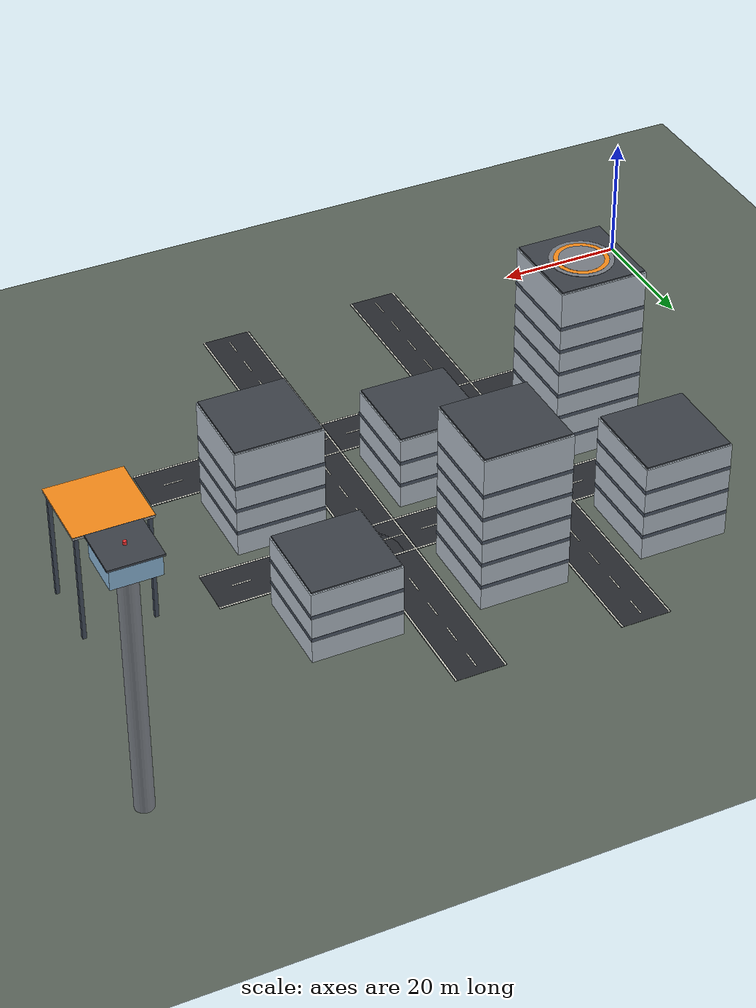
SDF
<sdf version="1.9">
 <world name="autonomous_city">
  <model name="ground">
   <static>true</static>
   <link name="link">
    <collision name="collision">
     <geometry><plane><normal>0 0 1</normal><size>600 600</size></plane></geometry>
     <surface><friction><ode><mu>100</mu><mu2>50</mu2></ode></friction></surface>
    </collision>
    <visual name="visual">
     <geometry><plane><normal>0 0 1</normal><size>600 600</size></plane></geometry>
     <material>
      <ambient>0.36 0.40 0.36 1</ambient>
      <diffuse>0.36 0.40 0.36 1</diffuse>
      <specular>0.15 0.15 0.15 1</specular>
     </material>
    </visual>
   </link>
  </model>
  <model name="building_04">
   <static>true</static>
   <pose>30 41 0 0 0 0.0</pose>
   <link name="link">
    <visual name="core">
     <pose>0 0 15.0 0 0 0</pose>
     <geometry><box><size>14.000 14.000 30.000</size></box></geometry>
     <material>
      <ambient>0.70 0.74 0.78 1</ambient>
      <diffuse>0.70 0.74 0.78 1</diffuse>
      <specular>0.15 0.15 0.15 1</specular>
     </material>
    </visual>
    <collision name="core_c">
     <pose>0 0 15.0 0 0 0</pose>
     <geometry><box><size>14.000 14.000 30.000</size></box></geometry>
    </collision>
    <visual name="band1">
     <pose>0 0 4.00 0 0 0</pose>
     <geometry><box><size>14.060 14.060 0.600</size></box></geometry>
     <material>
      <ambient>0.30 0.34 0.40 1</ambient>
      <diffuse>0.30 0.34 0.40 1</diffuse>
      <specular>0.15 0.15 0.15 1</specular>
     </material>
    </visual>
    <visual name="band2">
     <pose>0 0 8.00 0 0 0</pose>
     <geometry><box><size>14.060 14.060 0.600</size></box></geometry>
     <material>
      <ambient>0.30 0.34 0.40 1</ambient>
      <diffuse>0.30 0.34 0.40 1</diffuse>
      <specular>0.15 0.15 0.15 1</specular>
     </material>
    </visual>
    <visual name="band3">
     <pose>0 0 12.00 0 0 0</pose>
     <geometry><box><size>14.060 14.060 0.600</size></box></geometry>
     <material>
      <ambient>0.30 0.34 0.40 1</ambient>
      <diffuse>0.30 0.34 0.40 1</diffuse>
      <specular>0.15 0.15 0.15 1</specular>
     </material>
    </visual>
    <visual name="band4">
     <pose>0 0 16.00 0 0 0</pose>
     <geometry><box><size>14.060 14.060 0.600</size></box></geometry>
     <material>
      <ambient>0.30 0.34 0.40 1</ambient>
      <diffuse>0.30 0.34 0.40 1</diffuse>
      <specular>0.15 0.15 0.15 1</specular>
     </material>
    </visual>
    <visual name="band5">
     <pose>0 0 20.00 0 0 0</pose>
     <geometry><box><size>14.060 14.060 0.600</size></box></geometry>
     <material>
      <ambient>0.30 0.34 0.40 1</ambient>
      <diffuse>0.30 0.34 0.40 1</diffuse>
      <specular>0.15 0.15 0.15 1</specular>
     </material>
    </visual>
    <visual name="band6">
     <pose>0 0 24.00 0 0 0</pose>
     <geometry><box><size>14.060 14.060 0.600</size></box></geometry>
     <material>
      <ambient>0.30 0.34 0.40 1</ambient>
      <diffuse>0.30 0.34 0.40 1</diffuse>
      <specular>0.15 0.15 0.15 1</specular>
     </material>
    </visual>
    <visual name="roof">
     <pose>0 0 30.15 0 0 0</pose>
     <geometry><box><size>13.600 13.600 0.300</size></box></geometry>
     <material>
      <ambient>0.24 0.26 0.29 1</ambient>
      <diffuse>0.24 0.26 0.29 1</diffuse>
      <specular>0.15 0.15 0.15 1</specular>
     </material>
    </visual>
    <collision name="roof_c">
     <pose>0 0 30.15 0 0 0</pose>
     <geometry><box><size>13.600 13.600 0.300</size></box></geometry>
    </collision>
    <visual name="helipad">
     <pose>0 0 30.33 0 0 0</pose>
     <geometry><cylinder><radius>4.900</radius><length>0.050</length></cylinder></geometry>
     <material>
      <ambient>0.48 0.50 0.53 1</ambient>
      <diffuse>0.48 0.50 0.53 1</diffuse>
      <specular>0.15 0.15 0.15 1</specular>
     </material>
    </visual>
    <visual name="helipad_ring">
     <pose>0 0 30.34 0 0 0</pose>
     <geometry><cylinder><radius>4.165</radius><length>0.060</length></cylinder></geometry>
     <material>
      <ambient>0.98 0.55 0.10 1</ambient>
      <diffuse>0.98 0.55 0.10 1</diffuse>
      <specular>0.15 0.15 0.15 1</specular>
     </material>
    </visual>
    <visual name="helipad_core">
     <pose>0 0 30.35 0 0 0</pose>
     <geometry><cylinder><radius>3.430</radius><length>0.070</length></cylinder></geometry>
     <material>
      <ambient>0.48 0.50 0.53 1</ambient>
      <diffuse>0.48 0.50 0.53 1</diffuse>
      <specular>0.15 0.15 0.15 1</specular>
     </material>
    </visual>
   </link>
  </model>
  <model name="building_05">
   <static>true</static>
   <pose>56 41 0 0 0 0.0</pose>
   <link name="link">
    <visual name="core">
     <pose>0 0 6.0 0 0 0</pose>
     <geometry><box><size>14.000 14.000 12.000</size></box></geometry>
     <material>
      <ambient>0.70 0.74 0.78 1</ambient>
      <diffuse>0.70 0.74 0.78 1</diffuse>
      <specular>0.15 0.15 0.15 1</specular>
     </material>
    </visual>
    <collision name="core_c">
     <pose>0 0 6.0 0 0 0</pose>
     <geometry><box><size>14.000 14.000 12.000</size></box></geometry>
    </collision>
    <visual name="band1">
     <pose>0 0 4.00 0 0 0</pose>
     <geometry><box><size>14.060 14.060 0.600</size></box></geometry>
     <material>
      <ambient>0.30 0.34 0.40 1</ambient>
      <diffuse>0.30 0.34 0.40 1</diffuse>
      <specular>0.15 0.15 0.15 1</specular>
     </material>
    </visual>
    <visual name="band2">
     <pose>0 0 8.00 0 0 0</pose>
     <geometry><box><size>14.060 14.060 0.600</size></box></geometry>
     <material>
      <ambient>0.30 0.34 0.40 1</ambient>
      <diffuse>0.30 0.34 0.40 1</diffuse>
      <specular>0.15 0.15 0.15 1</specular>
     </material>
    </visual>
    <visual name="roof">
     <pose>0 0 12.15 0 0 0</pose>
     <geometry><box><size>13.600 13.600 0.300</size></box></geometry>
     <material>
      <ambient>0.24 0.26 0.29 1</ambient>
      <diffuse>0.24 0.26 0.29 1</diffuse>
      <specular>0.15 0.15 0.15 1</specular>
     </material>
    </visual>
    <collision name="roof_c">
     <pose>0 0 12.15 0 0 0</pose>
     <geometry><box><size>13.600 13.600 0.300</size></box></geometry>
    </collision>
   </link>
  </model>
  <model name="building_06">
   <static>true</static>
   <pose>82 41 0 0 0 0.0</pose>
   <link name="link">
    <visual name="core">
     <pose>0 0 9.0 0 0 0</pose>
     <geometry><box><size>14.000 14.000 18.000</size></box></geometry>
     <material>
      <ambient>0.70 0.74 0.78 1</ambient>
      <diffuse>0.70 0.74 0.78 1</diffuse>
      <specular>0.15 0.15 0.15 1</specular>
     </material>
    </visual>
    <collision name="core_c">
     <pose>0 0 9.0 0 0 0</pose>
     <geometry><box><size>14.000 14.000 18.000</size></box></geometry>
    </collision>
    <visual name="band1">
     <pose>0 0 4.00 0 0 0</pose>
     <geometry><box><size>14.060 14.060 0.600</size></box></geometry>
     <material>
      <ambient>0.30 0.34 0.40 1</ambient>
      <diffuse>0.30 0.34 0.40 1</diffuse>
      <specular>0.15 0.15 0.15 1</specular>
     </material>
    </visual>
    <visual name="band2">
     <pose>0 0 8.00 0 0 0</pose>
     <geometry><box><size>14.060 14.060 0.600</size></box></geometry>
     <material>
      <ambient>0.30 0.34 0.40 1</ambient>
      <diffuse>0.30 0.34 0.40 1</diffuse>
      <specular>0.15 0.15 0.15 1</specular>
     </material>
    </visual>
    <visual name="band3">
     <pose>0 0 12.00 0 0 0</pose>
     <geometry><box><size>14.060 14.060 0.600</size></box></geometry>
     <material>
      <ambient>0.30 0.34 0.40 1</ambient>
      <diffuse>0.30 0.34 0.40 1</diffuse>
      <specular>0.15 0.15 0.15 1</specular>
     </material>
    </visual>
    <visual name="roof">
     <pose>0 0 18.15 0 0 0</pose>
     <geometry><box><size>13.600 13.600 0.300</size></box></geometry>
     <material>
      <ambient>0.24 0.26 0.29 1</ambient>
      <diffuse>0.24 0.26 0.29 1</diffuse>
      <specular>0.15 0.15 0.15 1</specular>
     </material>
    </visual>
    <collision name="roof_c">
     <pose>0 0 18.15 0 0 0</pose>
     <geometry><box><size>13.600 13.600 0.300</size></box></geometry>
    </collision>
   </link>
  </model>
  <model name="building_07">
   <static>true</static>
   <pose>30 67 0 0 0 0.0</pose>
   <link name="link">
    <visual name="core">
     <pose>0 0 8.0 0 0 0</pose>
     <geometry><box><size>14.000 14.000 16.000</size></box></geometry>
     <material>
      <ambient>0.70 0.74 0.78 1</ambient>
      <diffuse>0.70 0.74 0.78 1</diffuse>
      <specular>0.15 0.15 0.15 1</specular>
     </material>
    </visual>
    <collision name="core_c">
     <pose>0 0 8.0 0 0 0</pose>
     <geometry><box><size>14.000 14.000 16.000</size></box></geometry>
    </collision>
    <visual name="band1">
     <pose>0 0 4.00 0 0 0</pose>
     <geometry><box><size>14.060 14.060 0.600</size></box></geometry>
     <material>
      <ambient>0.30 0.34 0.40 1</ambient>
      <diffuse>0.30 0.34 0.40 1</diffuse>
      <specular>0.15 0.15 0.15 1</specular>
     </material>
    </visual>
    <visual name="band2">
     <pose>0 0 8.00 0 0 0</pose>
     <geometry><box><size>14.060 14.060 0.600</size></box></geometry>
     <material>
      <ambient>0.30 0.34 0.40 1</ambient>
      <diffuse>0.30 0.34 0.40 1</diffuse>
      <specular>0.15 0.15 0.15 1</specular>
     </material>
    </visual>
    <visual name="band3">
     <pose>0 0 12.00 0 0 0</pose>
     <geometry><box><size>14.060 14.060 0.600</size></box></geometry>
     <material>
      <ambient>0.30 0.34 0.40 1</ambient>
      <diffuse>0.30 0.34 0.40 1</diffuse>
      <specular>0.15 0.15 0.15 1</specular>
     </material>
    </visual>
    <visual name="roof">
     <pose>0 0 16.15 0 0 0</pose>
     <geometry><box><size>13.600 13.600 0.300</size></box></geometry>
     <material>
      <ambient>0.24 0.26 0.29 1</ambient>
      <diffuse>0.24 0.26 0.29 1</diffuse>
      <specular>0.15 0.15 0.15 1</specular>
     </material>
    </visual>
    <collision name="roof_c">
     <pose>0 0 16.15 0 0 0</pose>
     <geometry><box><size>13.600 13.600 0.300</size></box></geometry>
    </collision>
   </link>
  </model>
  <model name="building_08">
   <static>true</static>
   <pose>56 67 0 0 0 0.0</pose>
   <link name="link">
    <visual name="core">
     <pose>0 0 13.0 0 0 0</pose>
     <geometry><box><size>14.000 14.000 26.000</size></box></geometry>
     <material>
      <ambient>0.70 0.74 0.78 1</ambient>
      <diffuse>0.70 0.74 0.78 1</diffuse>
      <specular>0.15 0.15 0.15 1</specular>
     </material>
    </visual>
    <collision name="core_c">
     <pose>0 0 13.0 0 0 0</pose>
     <geometry><box><size>14.000 14.000 26.000</size></box></geometry>
    </collision>
    <visual name="band1">
     <pose>0 0 4.00 0 0 0</pose>
     <geometry><box><size>14.060 14.060 0.600</size></box></geometry>
     <material>
      <ambient>0.30 0.34 0.40 1</ambient>
      <diffuse>0.30 0.34 0.40 1</diffuse>
      <specular>0.15 0.15 0.15 1</specular>
     </material>
    </visual>
    <visual name="band2">
     <pose>0 0 8.00 0 0 0</pose>
     <geometry><box><size>14.060 14.060 0.600</size></box></geometry>
     <material>
      <ambient>0.30 0.34 0.40 1</ambient>
      <diffuse>0.30 0.34 0.40 1</diffuse>
      <specular>0.15 0.15 0.15 1</specular>
     </material>
    </visual>
    <visual name="band3">
     <pose>0 0 12.00 0 0 0</pose>
     <geometry><box><size>14.060 14.060 0.600</size></box></geometry>
     <material>
      <ambient>0.30 0.34 0.40 1</ambient>
      <diffuse>0.30 0.34 0.40 1</diffuse>
      <specular>0.15 0.15 0.15 1</specular>
     </material>
    </visual>
    <visual name="band4">
     <pose>0 0 16.00 0 0 0</pose>
     <geometry><box><size>14.060 14.060 0.600</size></box></geometry>
     <material>
      <ambient>0.30 0.34 0.40 1</ambient>
      <diffuse>0.30 0.34 0.40 1</diffuse>
      <specular>0.15 0.15 0.15 1</specular>
     </material>
    </visual>
    <visual name="band5">
     <pose>0 0 20.00 0 0 0</pose>
     <geometry><box><size>14.060 14.060 0.600</size></box></geometry>
     <material>
      <ambient>0.30 0.34 0.40 1</ambient>
      <diffuse>0.30 0.34 0.40 1</diffuse>
      <specular>0.15 0.15 0.15 1</specular>
     </material>
    </visual>
    <visual name="roof">
     <pose>0 0 26.15 0 0 0</pose>
     <geometry><box><size>13.600 13.600 0.300</size></box></geometry>
     <material>
      <ambient>0.24 0.26 0.29 1</ambient>
      <diffuse>0.24 0.26 0.29 1</diffuse>
      <specular>0.15 0.15 0.15 1</specular>
     </material>
    </visual>
    <collision name="roof_c">
     <pose>0 0 26.15 0 0 0</pose>
     <geometry><box><size>13.600 13.600 0.300</size></box></geometry>
    </collision>
   </link>
  </model>
  <model name="building_09">
   <static>true</static>
   <pose>82 67 0 0 0 0.0</pose>
   <link name="link">
    <visual name="core">
     <pose>0 0 6.0 0 0 0</pose>
     <geometry><box><size>14.000 14.000 12.000</size></box></geometry>
     <material>
      <ambient>0.70 0.74 0.78 1</ambient>
      <diffuse>0.70 0.74 0.78 1</diffuse>
      <specular>0.15 0.15 0.15 1</specular>
     </material>
    </visual>
    <collision name="core_c">
     <pose>0 0 6.0 0 0 0</pose>
     <geometry><box><size>14.000 14.000 12.000</size></box></geometry>
    </collision>
    <visual name="band1">
     <pose>0 0 4.00 0 0 0</pose>
     <geometry><box><size>14.060 14.060 0.600</size></box></geometry>
     <material>
      <ambient>0.30 0.34 0.40 1</ambient>
      <diffuse>0.30 0.34 0.40 1</diffuse>
      <specular>0.15 0.15 0.15 1</specular>
     </material>
    </visual>
    <visual name="band2">
     <pose>0 0 8.00 0 0 0</pose>
     <geometry><box><size>14.060 14.060 0.600</size></box></geometry>
     <material>
      <ambient>0.30 0.34 0.40 1</ambient>
      <diffuse>0.30 0.34 0.40 1</diffuse>
      <specular>0.15 0.15 0.15 1</specular>
     </material>
    </visual>
    <visual name="roof">
     <pose>0 0 12.15 0 0 0</pose>
     <geometry><box><size>13.600 13.600 0.300</size></box></geometry>
     <material>
      <ambient>0.24 0.26 0.29 1</ambient>
      <diffuse>0.24 0.26 0.29 1</diffuse>
      <specular>0.15 0.15 0.15 1</specular>
     </material>
    </visual>
    <collision name="roof_c">
     <pose>0 0 12.15 0 0 0</pose>
     <geometry><box><size>13.600 13.600 0.300</size></box></geometry>
    </collision>
   </link>
  </model>
  <model name="street_ns_1">
   <static>true</static>
   <pose>43 41 0 0 0 1.5708</pose>
   <link name="link">
    <visual name="asphalt">
     <pose>0 0 0.02 0 0 0</pose>
     <geometry><box><size>90.000 8.000 0.040</size></box></geometry>
     <material>
      <ambient>0.16 0.17 0.19 1</ambient>
      <diffuse>0.16 0.17 0.19 1</diffuse>
      <specular>0.15 0.15 0.15 1</specular>
     </material>
    </visual>
    <visual name="dash0">
     <pose>-42.00 0 0.045 0 0 0</pose>
     <geometry><box><size>3.000 0.200 0.010</size></box></geometry>
     <material>
      <ambient>0.95 0.95 0.90 1</ambient>
      <diffuse>0.95 0.95 0.90 1</diffuse>
      <specular>0.15 0.15 0.15 1</specular>
     </material>
    </visual>
    <visual name="dash1">
     <pose>-36.00 0 0.045 0 0 0</pose>
     <geometry><box><size>3.000 0.200 0.010</size></box></geometry>
     <material>
      <ambient>0.95 0.95 0.90 1</ambient>
      <diffuse>0.95 0.95 0.90 1</diffuse>
      <specular>0.15 0.15 0.15 1</specular>
     </material>
    </visual>
    <visual name="dash2">
     <pose>-30.00 0 0.045 0 0 0</pose>
     <geometry><box><size>3.000 0.200 0.010</size></box></geometry>
     <material>
      <ambient>0.95 0.95 0.90 1</ambient>
      <diffuse>0.95 0.95 0.90 1</diffuse>
      <specular>0.15 0.15 0.15 1</specular>
     </material>
    </visual>
    <visual name="dash3">
     <pose>-24.00 0 0.045 0 0 0</pose>
     <geometry><box><size>3.000 0.200 0.010</size></box></geometry>
     <material>
      <ambient>0.95 0.95 0.90 1</ambient>
      <diffuse>0.95 0.95 0.90 1</diffuse>
      <specular>0.15 0.15 0.15 1</specular>
     </material>
    </visual>
    <visual name="dash4">
     <pose>-18.00 0 0.045 0 0 0</pose>
     <geometry><box><size>3.000 0.200 0.010</size></box></geometry>
     <material>
      <ambient>0.95 0.95 0.90 1</ambient>
      <diffuse>0.95 0.95 0.90 1</diffuse>
      <specular>0.15 0.15 0.15 1</specular>
     </material>
    </visual>
    <visual name="dash5">
     <pose>-12.00 0 0.045 0 0 0</pose>
     <geometry><box><size>3.000 0.200 0.010</size></box></geometry>
     <material>
      <ambient>0.95 0.95 0.90 1</ambient>
      <diffuse>0.95 0.95 0.90 1</diffuse>
      <specular>0.15 0.15 0.15 1</specular>
     </material>
    </visual>
    <visual name="dash6">
     <pose>-6.00 0 0.045 0 0 0</pose>
     <geometry><box><size>3.000 0.200 0.010</size></box></geometry>
     <material>
      <ambient>0.95 0.95 0.90 1</ambient>
      <diffuse>0.95 0.95 0.90 1</diffuse>
      <specular>0.15 0.15 0.15 1</specular>
     </material>
    </visual>
    <visual name="dash7">
     <pose>0.00 0 0.045 0 0 0</pose>
     <geometry><box><size>3.000 0.200 0.010</size></box></geometry>
     <material>
      <ambient>0.95 0.95 0.90 1</ambient>
      <diffuse>0.95 0.95 0.90 1</diffuse>
      <specular>0.15 0.15 0.15 1</specular>
     </material>
    </visual>
    <visual name="dash8">
     <pose>6.00 0 0.045 0 0 0</pose>
     <geometry><box><size>3.000 0.200 0.010</size></box></geometry>
     <material>
      <ambient>0.95 0.95 0.90 1</ambient>
      <diffuse>0.95 0.95 0.90 1</diffuse>
      <specular>0.15 0.15 0.15 1</specular>
     </material>
    </visual>
    <visual name="dash9">
     <pose>12.00 0 0.045 0 0 0</pose>
     <geometry><box><size>3.000 0.200 0.010</size></box></geometry>
     <material>
      <ambient>0.95 0.95 0.90 1</ambient>
      <diffuse>0.95 0.95 0.90 1</diffuse>
      <specular>0.15 0.15 0.15 1</specular>
     </material>
    </visual>
    <visual name="dash10">
     <pose>18.00 0 0.045 0 0 0</pose>
     <geometry><box><size>3.000 0.200 0.010</size></box></geometry>
     <material>
      <ambient>0.95 0.95 0.90 1</ambient>
      <diffuse>0.95 0.95 0.90 1</diffuse>
      <specular>0.15 0.15 0.15 1</specular>
     </material>
    </visual>
    <visual name="dash11">
     <pose>24.00 0 0.045 0 0 0</pose>
     <geometry><box><size>3.000 0.200 0.010</size></box></geometry>
     <material>
      <ambient>0.95 0.95 0.90 1</ambient>
      <diffuse>0.95 0.95 0.90 1</diffuse>
      <specular>0.15 0.15 0.15 1</specular>
     </material>
    </visual>
    <visual name="dash12">
     <pose>30.00 0 0.045 0 0 0</pose>
     <geometry><box><size>3.000 0.200 0.010</size></box></geometry>
     <material>
      <ambient>0.95 0.95 0.90 1</ambient>
      <diffuse>0.95 0.95 0.90 1</diffuse>
      <specular>0.15 0.15 0.15 1</specular>
     </material>
    </visual>
    <visual name="dash13">
     <pose>36.00 0 0.045 0 0 0</pose>
     <geometry><box><size>3.000 0.200 0.010</size></box></geometry>
     <material>
      <ambient>0.95 0.95 0.90 1</ambient>
      <diffuse>0.95 0.95 0.90 1</diffuse>
      <specular>0.15 0.15 0.15 1</specular>
     </material>
    </visual>
    <visual name="dash14">
     <pose>42.00 0 0.045 0 0 0</pose>
     <geometry><box><size>3.000 0.200 0.010</size></box></geometry>
     <material>
      <ambient>0.95 0.95 0.90 1</ambient>
      <diffuse>0.95 0.95 0.90 1</diffuse>
      <specular>0.15 0.15 0.15 1</specular>
     </material>
    </visual>
    <visual name="edge_l">
     <pose>0 3.80 0.045 0 0 0</pose>
     <geometry><box><size>90.000 0.250 0.010</size></box></geometry>
     <material>
      <ambient>0.95 0.95 0.90 1</ambient>
      <diffuse>0.95 0.95 0.90 1</diffuse>
      <specular>0.15 0.15 0.15 1</specular>
     </material>
    </visual>
    <visual name="edge_r">
     <pose>0 -3.80 0.045 0 0 0</pose>
     <geometry><box><size>90.000 0.250 0.010</size></box></geometry>
     <material>
      <ambient>0.95 0.95 0.90 1</ambient>
      <diffuse>0.95 0.95 0.90 1</diffuse>
      <specular>0.15 0.15 0.15 1</specular>
     </material>
    </visual>
   </link>
  </model>
  <model name="street_ns_2">
   <static>true</static>
   <pose>69 41 0 0 0 1.5708</pose>
   <link name="link">
    <visual name="asphalt">
     <pose>0 0 0.02 0 0 0</pose>
     <geometry><box><size>90.000 8.000 0.040</size></box></geometry>
     <material>
      <ambient>0.16 0.17 0.19 1</ambient>
      <diffuse>0.16 0.17 0.19 1</diffuse>
      <specular>0.15 0.15 0.15 1</specular>
     </material>
    </visual>
    <visual name="dash0">
     <pose>-42.00 0 0.045 0 0 0</pose>
     <geometry><box><size>3.000 0.200 0.010</size></box></geometry>
     <material>
      <ambient>0.95 0.95 0.90 1</ambient>
      <diffuse>0.95 0.95 0.90 1</diffuse>
      <specular>0.15 0.15 0.15 1</specular>
     </material>
    </visual>
    <visual name="dash1">
     <pose>-36.00 0 0.045 0 0 0</pose>
     <geometry><box><size>3.000 0.200 0.010</size></box></geometry>
     <material>
      <ambient>0.95 0.95 0.90 1</ambient>
      <diffuse>0.95 0.95 0.90 1</diffuse>
      <specular>0.15 0.15 0.15 1</specular>
     </material>
    </visual>
    <visual name="dash2">
     <pose>-30.00 0 0.045 0 0 0</pose>
     <geometry><box><size>3.000 0.200 0.010</size></box></geometry>
     <material>
      <ambient>0.95 0.95 0.90 1</ambient>
      <diffuse>0.95 0.95 0.90 1</diffuse>
      <specular>0.15 0.15 0.15 1</specular>
     </material>
    </visual>
    <visual name="dash3">
     <pose>-24.00 0 0.045 0 0 0</pose>
     <geometry><box><size>3.000 0.200 0.010</size></box></geometry>
     <material>
      <ambient>0.95 0.95 0.90 1</ambient>
      <diffuse>0.95 0.95 0.90 1</diffuse>
      <specular>0.15 0.15 0.15 1</specular>
     </material>
    </visual>
    <visual name="dash4">
     <pose>-18.00 0 0.045 0 0 0</pose>
     <geometry><box><size>3.000 0.200 0.010</size></box></geometry>
     <material>
      <ambient>0.95 0.95 0.90 1</ambient>
      <diffuse>0.95 0.95 0.90 1</diffuse>
      <specular>0.15 0.15 0.15 1</specular>
     </material>
    </visual>
    <visual name="dash5">
     <pose>-12.00 0 0.045 0 0 0</pose>
     <geometry><box><size>3.000 0.200 0.010</size></box></geometry>
     <material>
      <ambient>0.95 0.95 0.90 1</ambient>
      <diffuse>0.95 0.95 0.90 1</diffuse>
      <specular>0.15 0.15 0.15 1</specular>
     </material>
    </visual>
    <visual name="dash6">
     <pose>-6.00 0 0.045 0 0 0</pose>
     <geometry><box><size>3.000 0.200 0.010</size></box></geometry>
     <material>
      <ambient>0.95 0.95 0.90 1</ambient>
      <diffuse>0.95 0.95 0.90 1</diffuse>
      <specular>0.15 0.15 0.15 1</specular>
     </material>
    </visual>
    <visual name="dash7">
     <pose>0.00 0 0.045 0 0 0</pose>
     <geometry><box><size>3.000 0.200 0.010</size></box></geometry>
     <material>
      <ambient>0.95 0.95 0.90 1</ambient>
      <diffuse>0.95 0.95 0.90 1</diffuse>
      <specular>0.15 0.15 0.15 1</specular>
     </material>
    </visual>
    <visual name="dash8">
     <pose>6.00 0 0.045 0 0 0</pose>
     <geometry><box><size>3.000 0.200 0.010</size></box></geometry>
     <material>
      <ambient>0.95 0.95 0.90 1</ambient>
      <diffuse>0.95 0.95 0.90 1</diffuse>
      <specular>0.15 0.15 0.15 1</specular>
     </material>
    </visual>
    <visual name="dash9">
     <pose>12.00 0 0.045 0 0 0</pose>
     <geometry><box><size>3.000 0.200 0.010</size></box></geometry>
     <material>
      <ambient>0.95 0.95 0.90 1</ambient>
      <diffuse>0.95 0.95 0.90 1</diffuse>
      <specular>0.15 0.15 0.15 1</specular>
     </material>
    </visual>
    <visual name="dash10">
     <pose>18.00 0 0.045 0 0 0</pose>
     <geometry><box><size>3.000 0.200 0.010</size></box></geometry>
     <material>
      <ambient>0.95 0.95 0.90 1</ambient>
      <diffuse>0.95 0.95 0.90 1</diffuse>
      <specular>0.15 0.15 0.15 1</specular>
     </material>
    </visual>
    <visual name="dash11">
     <pose>24.00 0 0.045 0 0 0</pose>
     <geometry><box><size>3.000 0.200 0.010</size></box></geometry>
     <material>
      <ambient>0.95 0.95 0.90 1</ambient>
      <diffuse>0.95 0.95 0.90 1</diffuse>
      <specular>0.15 0.15 0.15 1</specular>
     </material>
    </visual>
    <visual name="dash12">
     <pose>30.00 0 0.045 0 0 0</pose>
     <geometry><box><size>3.000 0.200 0.010</size></box></geometry>
     <material>
      <ambient>0.95 0.95 0.90 1</ambient>
      <diffuse>0.95 0.95 0.90 1</diffuse>
      <specular>0.15 0.15 0.15 1</specular>
     </material>
    </visual>
    <visual name="dash13">
     <pose>36.00 0 0.045 0 0 0</pose>
     <geometry><box><size>3.000 0.200 0.010</size></box></geometry>
     <material>
      <ambient>0.95 0.95 0.90 1</ambient>
      <diffuse>0.95 0.95 0.90 1</diffuse>
      <specular>0.15 0.15 0.15 1</specular>
     </material>
    </visual>
    <visual name="dash14">
     <pose>42.00 0 0.045 0 0 0</pose>
     <geometry><box><size>3.000 0.200 0.010</size></box></geometry>
     <material>
      <ambient>0.95 0.95 0.90 1</ambient>
      <diffuse>0.95 0.95 0.90 1</diffuse>
      <specular>0.15 0.15 0.15 1</specular>
     </material>
    </visual>
    <visual name="edge_l">
     <pose>0 3.80 0.045 0 0 0</pose>
     <geometry><box><size>90.000 0.250 0.010</size></box></geometry>
     <material>
      <ambient>0.95 0.95 0.90 1</ambient>
      <diffuse>0.95 0.95 0.90 1</diffuse>
      <specular>0.15 0.15 0.15 1</specular>
     </material>
    </visual>
    <visual name="edge_r">
     <pose>0 -3.80 0.045 0 0 0</pose>
     <geometry><box><size>90.000 0.250 0.010</size></box></geometry>
     <material>
      <ambient>0.95 0.95 0.90 1</ambient>
      <diffuse>0.95 0.95 0.90 1</diffuse>
      <specular>0.15 0.15 0.15 1</specular>
     </material>
    </visual>
   </link>
  </model>
  <model name="street_ew_1">
   <static>true</static>
   <pose>56 28 0 0 0 0.0</pose>
   <link name="link">
    <visual name="asphalt">
     <pose>0 0 0.02 0 0 0</pose>
     <geometry><box><size>80.000 8.000 0.040</size></box></geometry>
     <material>
      <ambient>0.16 0.17 0.19 1</ambient>
      <diffuse>0.16 0.17 0.19 1</diffuse>
      <specular>0.15 0.15 0.15 1</specular>
     </material>
    </visual>
    <visual name="dash0">
     <pose>-37.00 0 0.045 0 0 0</pose>
     <geometry><box><size>3.000 0.200 0.010</size></box></geometry>
     <material>
      <ambient>0.95 0.95 0.90 1</ambient>
      <diffuse>0.95 0.95 0.90 1</diffuse>
      <specular>0.15 0.15 0.15 1</specular>
     </material>
    </visual>
    <visual name="dash1">
     <pose>-31.00 0 0.045 0 0 0</pose>
     <geometry><box><size>3.000 0.200 0.010</size></box></geometry>
     <material>
      <ambient>0.95 0.95 0.90 1</ambient>
      <diffuse>0.95 0.95 0.90 1</diffuse>
      <specular>0.15 0.15 0.15 1</specular>
     </material>
    </visual>
    <visual name="dash2">
     <pose>-25.00 0 0.045 0 0 0</pose>
     <geometry><box><size>3.000 0.200 0.010</size></box></geometry>
     <material>
      <ambient>0.95 0.95 0.90 1</ambient>
      <diffuse>0.95 0.95 0.90 1</diffuse>
      <specular>0.15 0.15 0.15 1</specular>
     </material>
    </visual>
    <visual name="dash3">
     <pose>-19.00 0 0.045 0 0 0</pose>
     <geometry><box><size>3.000 0.200 0.010</size></box></geometry>
     <material>
      <ambient>0.95 0.95 0.90 1</ambient>
      <diffuse>0.95 0.95 0.90 1</diffuse>
      <specular>0.15 0.15 0.15 1</specular>
     </material>
    </visual>
    <visual name="dash4">
     <pose>-13.00 0 0.045 0 0 0</pose>
     <geometry><box><size>3.000 0.200 0.010</size></box></geometry>
     <material>
      <ambient>0.95 0.95 0.90 1</ambient>
      <diffuse>0.95 0.95 0.90 1</diffuse>
      <specular>0.15 0.15 0.15 1</specular>
     </material>
    </visual>
    <visual name="dash5">
     <pose>-7.00 0 0.045 0 0 0</pose>
     <geometry><box><size>3.000 0.200 0.010</size></box></geometry>
     <material>
      <ambient>0.95 0.95 0.90 1</ambient>
      <diffuse>0.95 0.95 0.90 1</diffuse>
      <specular>0.15 0.15 0.15 1</specular>
     </material>
    </visual>
    <visual name="dash6">
     <pose>-1.00 0 0.045 0 0 0</pose>
     <geometry><box><size>3.000 0.200 0.010</size></box></geometry>
     <material>
      <ambient>0.95 0.95 0.90 1</ambient>
      <diffuse>0.95 0.95 0.90 1</diffuse>
      <specular>0.15 0.15 0.15 1</specular>
     </material>
    </visual>
    <visual name="dash7">
     <pose>5.00 0 0.045 0 0 0</pose>
     <geometry><box><size>3.000 0.200 0.010</size></box></geometry>
     <material>
      <ambient>0.95 0.95 0.90 1</ambient>
      <diffuse>0.95 0.95 0.90 1</diffuse>
      <specular>0.15 0.15 0.15 1</specular>
     </material>
    </visual>
    <visual name="dash8">
     <pose>11.00 0 0.045 0 0 0</pose>
     <geometry><box><size>3.000 0.200 0.010</size></box></geometry>
     <material>
      <ambient>0.95 0.95 0.90 1</ambient>
      <diffuse>0.95 0.95 0.90 1</diffuse>
      <specular>0.15 0.15 0.15 1</specular>
     </material>
    </visual>
    <visual name="dash9">
     <pose>17.00 0 0.045 0 0 0</pose>
     <geometry><box><size>3.000 0.200 0.010</size></box></geometry>
     <material>
      <ambient>0.95 0.95 0.90 1</ambient>
      <diffuse>0.95 0.95 0.90 1</diffuse>
      <specular>0.15 0.15 0.15 1</specular>
     </material>
    </visual>
    <visual name="dash10">
     <pose>23.00 0 0.045 0 0 0</pose>
     <geometry><box><size>3.000 0.200 0.010</size></box></geometry>
     <material>
      <ambient>0.95 0.95 0.90 1</ambient>
      <diffuse>0.95 0.95 0.90 1</diffuse>
      <specular>0.15 0.15 0.15 1</specular>
     </material>
    </visual>
    <visual name="dash11">
     <pose>29.00 0 0.045 0 0 0</pose>
     <geometry><box><size>3.000 0.200 0.010</size></box></geometry>
     <material>
      <ambient>0.95 0.95 0.90 1</ambient>
      <diffuse>0.95 0.95 0.90 1</diffuse>
      <specular>0.15 0.15 0.15 1</specular>
     </material>
    </visual>
    <visual name="dash12">
     <pose>35.00 0 0.045 0 0 0</pose>
     <geometry><box><size>3.000 0.200 0.010</size></box></geometry>
     <material>
      <ambient>0.95 0.95 0.90 1</ambient>
      <diffuse>0.95 0.95 0.90 1</diffuse>
      <specular>0.15 0.15 0.15 1</specular>
     </material>
    </visual>
    <visual name="edge_l">
     <pose>0 3.80 0.045 0 0 0</pose>
     <geometry><box><size>80.000 0.250 0.010</size></box></geometry>
     <material>
      <ambient>0.95 0.95 0.90 1</ambient>
      <diffuse>0.95 0.95 0.90 1</diffuse>
      <specular>0.15 0.15 0.15 1</specular>
     </material>
    </visual>
    <visual name="edge_r">
     <pose>0 -3.80 0.045 0 0 0</pose>
     <geometry><box><size>80.000 0.250 0.010</size></box></geometry>
     <material>
      <ambient>0.95 0.95 0.90 1</ambient>
      <diffuse>0.95 0.95 0.90 1</diffuse>
      <specular>0.15 0.15 0.15 1</specular>
     </material>
    </visual>
   </link>
  </model>
  <model name="street_ew_2">
   <static>true</static>
   <pose>56 54 0 0 0 0.0</pose>
   <link name="link">
    <visual name="asphalt">
     <pose>0 0 0.02 0 0 0</pose>
     <geometry><box><size>80.000 8.000 0.040</size></box></geometry>
     <material>
      <ambient>0.16 0.17 0.19 1</ambient>
      <diffuse>0.16 0.17 0.19 1</diffuse>
      <specular>0.15 0.15 0.15 1</specular>
     </material>
    </visual>
    <visual name="dash0">
     <pose>-37.00 0 0.045 0 0 0</pose>
     <geometry><box><size>3.000 0.200 0.010</size></box></geometry>
     <material>
      <ambient>0.95 0.95 0.90 1</ambient>
      <diffuse>0.95 0.95 0.90 1</diffuse>
      <specular>0.15 0.15 0.15 1</specular>
     </material>
    </visual>
    <visual name="dash1">
     <pose>-31.00 0 0.045 0 0 0</pose>
     <geometry><box><size>3.000 0.200 0.010</size></box></geometry>
     <material>
      <ambient>0.95 0.95 0.90 1</ambient>
      <diffuse>0.95 0.95 0.90 1</diffuse>
      <specular>0.15 0.15 0.15 1</specular>
     </material>
    </visual>
    <visual name="dash2">
     <pose>-25.00 0 0.045 0 0 0</pose>
     <geometry><box><size>3.000 0.200 0.010</size></box></geometry>
     <material>
      <ambient>0.95 0.95 0.90 1</ambient>
      <diffuse>0.95 0.95 0.90 1</diffuse>
      <specular>0.15 0.15 0.15 1</specular>
     </material>
    </visual>
    <visual name="dash3">
     <pose>-19.00 0 0.045 0 0 0</pose>
     <geometry><box><size>3.000 0.200 0.010</size></box></geometry>
     <material>
      <ambient>0.95 0.95 0.90 1</ambient>
      <diffuse>0.95 0.95 0.90 1</diffuse>
      <specular>0.15 0.15 0.15 1</specular>
     </material>
    </visual>
    <visual name="dash4">
     <pose>-13.00 0 0.045 0 0 0</pose>
     <geometry><box><size>3.000 0.200 0.010</size></box></geometry>
     <material>
      <ambient>0.95 0.95 0.90 1</ambient>
      <diffuse>0.95 0.95 0.90 1</diffuse>
      <specular>0.15 0.15 0.15 1</specular>
     </material>
    </visual>
    <visual name="dash5">
     <pose>-7.00 0 0.045 0 0 0</pose>
     <geometry><box><size>3.000 0.200 0.010</size></box></geometry>
     <material>
      <ambient>0.95 0.95 0.90 1</ambient>
      <diffuse>0.95 0.95 0.90 1</diffuse>
      <specular>0.15 0.15 0.15 1</specular>
     </material>
    </visual>
    <visual name="dash6">
     <pose>-1.00 0 0.045 0 0 0</pose>
     <geometry><box><size>3.000 0.200 0.010</size></box></geometry>
     <material>
      <ambient>0.95 0.95 0.90 1</ambient>
      <diffuse>0.95 0.95 0.90 1</diffuse>
      <specular>0.15 0.15 0.15 1</specular>
     </material>
    </visual>
    <visual name="dash7">
     <pose>5.00 0 0.045 0 0 0</pose>
     <geometry><box><size>3.000 0.200 0.010</size></box></geometry>
     <material>
      <ambient>0.95 0.95 0.90 1</ambient>
      <diffuse>0.95 0.95 0.90 1</diffuse>
      <specular>0.15 0.15 0.15 1</specular>
     </material>
    </visual>
    <visual name="dash8">
     <pose>11.00 0 0.045 0 0 0</pose>
     <geometry><box><size>3.000 0.200 0.010</size></box></geometry>
     <material>
      <ambient>0.95 0.95 0.90 1</ambient>
      <diffuse>0.95 0.95 0.90 1</diffuse>
      <specular>0.15 0.15 0.15 1</specular>
     </material>
    </visual>
    <visual name="dash9">
     <pose>17.00 0 0.045 0 0 0</pose>
     <geometry><box><size>3.000 0.200 0.010</size></box></geometry>
     <material>
      <ambient>0.95 0.95 0.90 1</ambient>
      <diffuse>0.95 0.95 0.90 1</diffuse>
      <specular>0.15 0.15 0.15 1</specular>
     </material>
    </visual>
    <visual name="dash10">
     <pose>23.00 0 0.045 0 0 0</pose>
     <geometry><box><size>3.000 0.200 0.010</size></box></geometry>
     <material>
      <ambient>0.95 0.95 0.90 1</ambient>
      <diffuse>0.95 0.95 0.90 1</diffuse>
      <specular>0.15 0.15 0.15 1</specular>
     </material>
    </visual>
    <visual name="dash11">
     <pose>29.00 0 0.045 0 0 0</pose>
     <geometry><box><size>3.000 0.200 0.010</size></box></geometry>
     <material>
      <ambient>0.95 0.95 0.90 1</ambient>
      <diffuse>0.95 0.95 0.90 1</diffuse>
      <specular>0.15 0.15 0.15 1</specular>
     </material>
    </visual>
    <visual name="dash12">
     <pose>35.00 0 0.045 0 0 0</pose>
     <geometry><box><size>3.000 0.200 0.010</size></box></geometry>
     <material>
      <ambient>0.95 0.95 0.90 1</ambient>
      <diffuse>0.95 0.95 0.90 1</diffuse>
      <specular>0.15 0.15 0.15 1</specular>
     </material>
    </visual>
    <visual name="edge_l">
     <pose>0 3.80 0.045 0 0 0</pose>
     <geometry><box><size>80.000 0.250 0.010</size></box></geometry>
     <material>
      <ambient>0.95 0.95 0.90 1</ambient>
      <diffuse>0.95 0.95 0.90 1</diffuse>
      <specular>0.15 0.15 0.15 1</specular>
     </material>
    </visual>
    <visual name="edge_r">
     <pose>0 -3.80 0.045 0 0 0</pose>
     <geometry><box><size>80.000 0.250 0.010</size></box></geometry>
     <material>
      <ambient>0.95 0.95 0.90 1</ambient>
      <diffuse>0.95 0.95 0.90 1</diffuse>
      <specular>0.15 0.15 0.15 1</specular>
     </material>
    </visual>
   </link>
  </model>
  <model name="sky_platform">
   <static>true</static>
   <pose>110 50 0 0 0 0.0</pose>
   <link name="link">
    <visual name="deck">
     <pose>0 0 18 0 0 0</pose>
     <geometry><box><size>12.000 12.000 0.400</size></box></geometry>
     <material>
      <ambient>0.62 0.64 0.66 1</ambient>
      <diffuse>0.62 0.64 0.66 1</diffuse>
      <specular>0.15 0.15 0.15 1</specular>
     </material>
    </visual>
    <collision name="deck_c">
     <pose>0 0 18 0 0 0</pose>
     <geometry><box><size>12.000 12.000 0.400</size></box></geometry>
    </collision>
    <visual name="edge">
     <pose>0 0 18.25 0 0 0</pose>
     <geometry><box><size>12.100 12.100 0.100</size></box></geometry>
     <material>
      <ambient>0.98 0.55 0.10 1</ambient>
      <diffuse>0.98 0.55 0.10 1</diffuse>
      <specular>0.15 0.15 0.15 1</specular>
     </material>
    </visual>
    <visual name="leg0">
     <pose>5.4 5.4 9.0 0 0 0</pose>
     <geometry><box><size>0.600 0.600 18.000</size></box></geometry>
     <material>
      <ambient>0.26 0.30 0.36 1</ambient>
      <diffuse>0.26 0.30 0.36 1</diffuse>
      <specular>0.15 0.15 0.15 1</specular>
     </material>
    </visual>
    <collision name="leg0_c">
     <pose>5.4 5.4 9.0 0 0 0</pose>
     <geometry><box><size>0.600 0.600 18.000</size></box></geometry>
    </collision>
    <visual name="leg1">
     <pose>5.4 -5.4 9.0 0 0 0</pose>
     <geometry><box><size>0.600 0.600 18.000</size></box></geometry>
     <material>
      <ambient>0.26 0.30 0.36 1</ambient>
      <diffuse>0.26 0.30 0.36 1</diffuse>
      <specular>0.15 0.15 0.15 1</specular>
     </material>
    </visual>
    <collision name="leg1_c">
     <pose>5.4 -5.4 9.0 0 0 0</pose>
     <geometry><box><size>0.600 0.600 18.000</size></box></geometry>
    </collision>
    <visual name="leg2">
     <pose>-5.4 5.4 9.0 0 0 0</pose>
     <geometry><box><size>0.600 0.600 18.000</size></box></geometry>
     <material>
      <ambient>0.26 0.30 0.36 1</ambient>
      <diffuse>0.26 0.30 0.36 1</diffuse>
      <specular>0.15 0.15 0.15 1</specular>
     </material>
    </visual>
    <collision name="leg2_c">
     <pose>-5.4 5.4 9.0 0 0 0</pose>
     <geometry><box><size>0.600 0.600 18.000</size></box></geometry>
    </collision>
    <visual name="leg3">
     <pose>-5.4 -5.4 9.0 0 0 0</pose>
     <geometry><box><size>0.600 0.600 18.000</size></box></geometry>
     <material>
      <ambient>0.26 0.30 0.36 1</ambient>
      <diffuse>0.26 0.30 0.36 1</diffuse>
      <specular>0.15 0.15 0.15 1</specular>
     </material>
    </visual>
    <collision name="leg3_c">
     <pose>-5.4 -5.4 9.0 0 0 0</pose>
     <geometry><box><size>0.600 0.600 18.000</size></box></geometry>
    </collision>
   </link>
  </model>
  <model name="relay_tower">
   <static>true</static>
   <pose>120 90 0 0 0 0</pose>
   <link name="link">
    <visual name="mast">
     <pose>0 0 20.0 0 0 0</pose>
     <geometry><cylinder><radius>1.400</radius><length>40.000</length></cylinder></geometry>
     <material>
      <ambient>0.48 0.50 0.53 1</ambient>
      <diffuse>0.48 0.50 0.53 1</diffuse>
      <specular>0.15 0.15 0.15 1</specular>
     </material>
    </visual>
    <collision name="mast_c">
     <pose>0 0 20.0 0 0 0</pose>
     <geometry><cylinder><radius>1.400</radius><length>40.000</length></cylinder></geometry>
    </collision>
    <visual name="cabin">
     <pose>0 0 41.5 0 0 0</pose>
     <geometry><box><size>7.000 7.000 3.000</size></box></geometry>
     <material>
      <ambient>0.55 0.72 0.85 0.9</ambient>
      <diffuse>0.55 0.72 0.85 0.9</diffuse>
      <specular>0.15 0.15 0.15 1</specular>
     </material>
    </visual>
    <collision name="cabin_c">
     <pose>0 0 41.5 0 0 0</pose>
     <geometry><box><size>7.000 7.000 3.000</size></box></geometry>
    </collision>
    <visual name="cabin_roof">
     <pose>0 0 43.15 0 0 0</pose>
     <geometry><box><size>7.560 7.560 0.300</size></box></geometry>
     <material>
      <ambient>0.24 0.26 0.29 1</ambient>
      <diffuse>0.24 0.26 0.29 1</diffuse>
      <specular>0.15 0.15 0.15 1</specular>
     </material>
    </visual>
    <collision name="cabin_roof_c">
     <pose>0 0 43.15 0 0 0</pose>
     <geometry><box><size>7.560 7.560 0.300</size></box></geometry>
    </collision>
    <visual name="beacon">
     <pose>0 0 43.6 0 0 0</pose>
     <geometry><cylinder><radius>0.250</radius><length>0.500</length></cylinder></geometry>
     <material>
      <ambient>0.95 0.20 0.20 1</ambient>
      <diffuse>0.95 0.20 0.20 1</diffuse>
      <specular>0.15 0.15 0.15 1</specular>
      <emissive>0.6 0.1 0.1 1</emissive>
     </material>
    </visual>
   </link>
  </model>
 </world>
</sdf>
